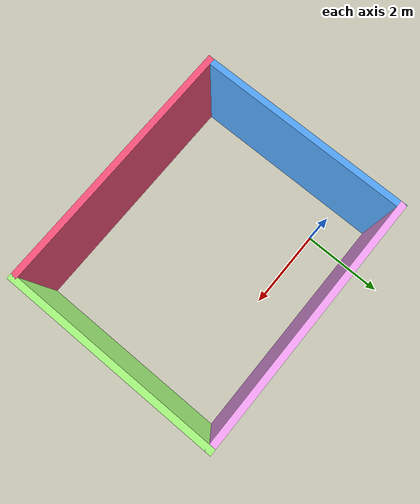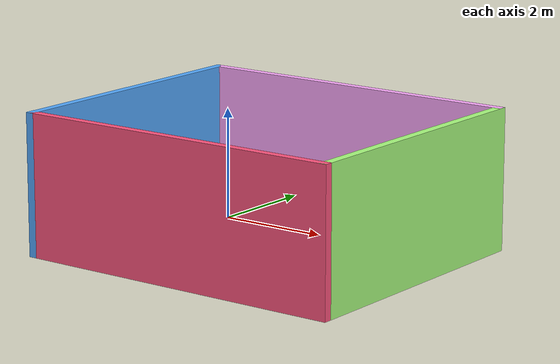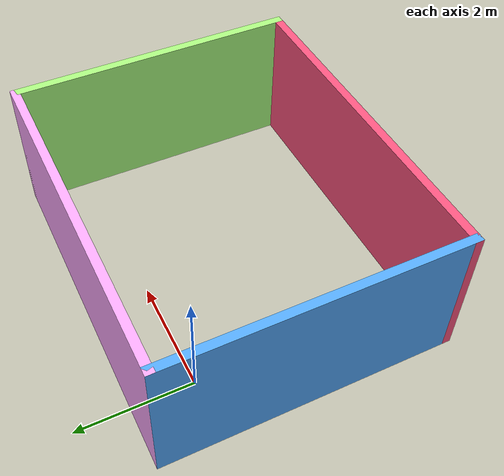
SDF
<?xml version='1.0'?>
<sdf version='1.6'>
  <model name='slam_house_2'>
    <pose frame=''>2 -1.5 0 0 -0 0</pose>
    <link name='Wall_0'>
      <collision name='Wall_0_Collision'>
        <geometry>
          <box>
            <size>6.15 0.15 2.5</size>
          </box>
        </geometry>
        <pose frame=''>0 0 1.25 0 -0 0</pose>
      </collision>
      <visual name='Wall_0_Visual'>
        <pose frame=''>0 0 1.25 0 -0 0</pose>
        <geometry>
          <box>
            <size>6.15 0.15 2.5</size>
          </box>
        </geometry>
        <material>
          <script>
            <uri>file://media/materials/scripts/gazebo.material</uri>
            <name>Gazebo/Grey</name>
          </script>
          <ambient>1 0.666667 1 1</ambient>
        </material>
      </visual>
      <pose frame=''>0 2.5 0 0 -0 0</pose>
    </link>
    <link name='Wall_1'>
      <collision name='Wall_1_Collision'>
        <geometry>
          <box>
            <size>5.15 0.15 2.5</size>
          </box>
        </geometry>
        <pose frame=''>0 0 1.25 0 -0 0</pose>
      </collision>
      <visual name='Wall_1_Visual'>
        <pose frame=''>0 0 1.25 0 -0 0</pose>
        <geometry>
          <box>
            <size>5.15 0.15 2.5</size>
          </box>
        </geometry>
        <material>
          <script>
            <uri>file://media/materials/scripts/gazebo.material</uri>
            <name>Gazebo/Grey</name>
          </script>
          <ambient>0.666667 1 0.498039 1</ambient>
        </material>
      </visual>
      <pose frame=''>3 0 0 0 0 -1.5708</pose>
    </link>
    <link name='Wall_2'>
      <collision name='Wall_2_Collision'>
        <geometry>
          <box>
            <size>6.15 0.15 2.5</size>
          </box>
        </geometry>
        <pose frame=''>0 0 1.25 0 -0 0</pose>
      </collision>
      <visual name='Wall_2_Visual'>
        <pose frame=''>0 0 1.25 0 -0 0</pose>
        <geometry>
          <box>
            <size>6.15 0.15 2.5</size>
          </box>
        </geometry>
        <material>
          <script>
            <uri>file://media/materials/scripts/gazebo.material</uri>
            <name>Gazebo/Grey</name>
          </script>
          <ambient>1 0.333333 0.498039 1</ambient>
        </material>
      </visual>
      <pose frame=''>0 -2.5 0 0 -0 3.14159</pose>
    </link>
    <link name='Wall_3'>
      <collision name='Wall_3_Collision'>
        <geometry>
          <box>
            <size>5.15 0.15 2.5</size>
          </box>
        </geometry>
        <pose frame=''>0 0 1.25 0 -0 0</pose>
      </collision>
      <visual name='Wall_3_Visual'>
        <pose frame=''>0 0 1.25 0 -0 0</pose>
        <geometry>
          <box>
            <size>5.15 0.15 2.5</size>
          </box>
        </geometry>
        <material>
          <script>
            <uri>file://media/materials/scripts/gazebo.material</uri>
            <name>Gazebo/Grey</name>
          </script>
          <ambient>0.333333 0.666667 1 1</ambient>
        </material>
      </visual>
      <pose frame=''>-3 0 0 0 -0 1.5708</pose>
    </link>
    <static>1</static>
  </model>
</sdf>
